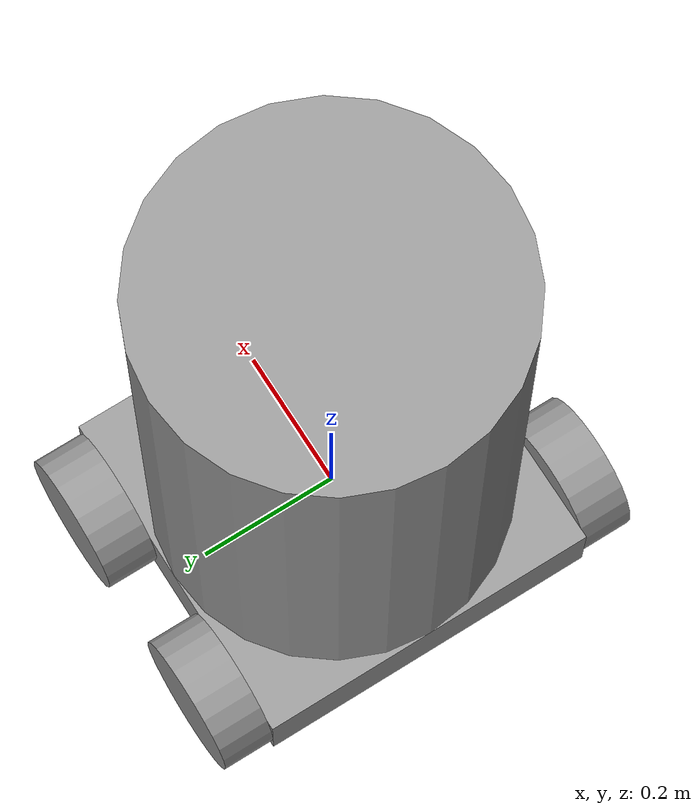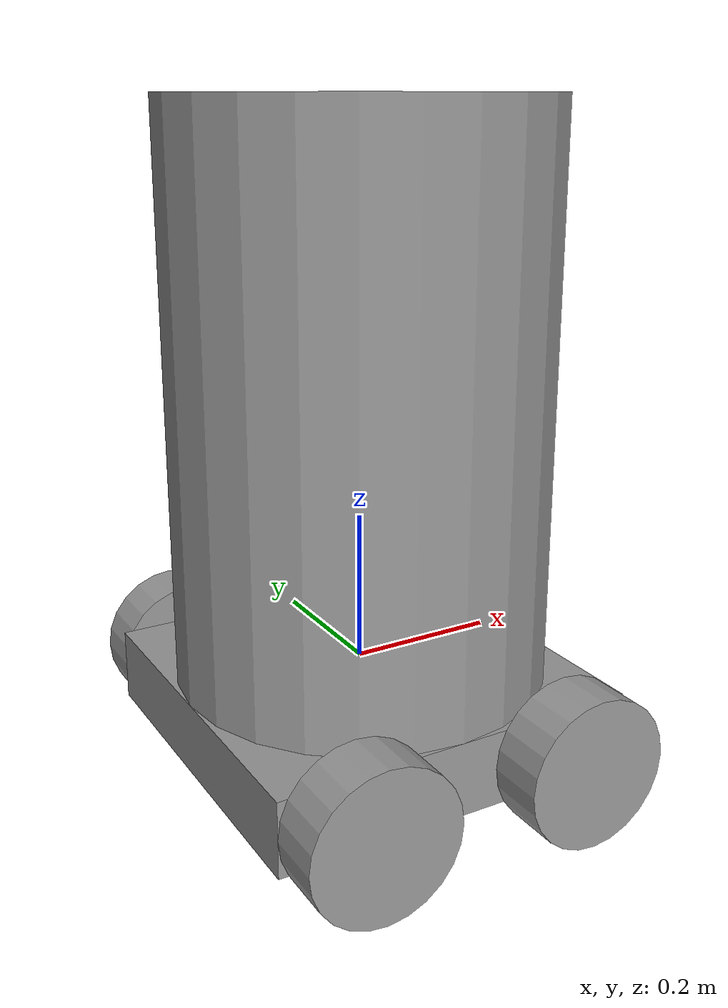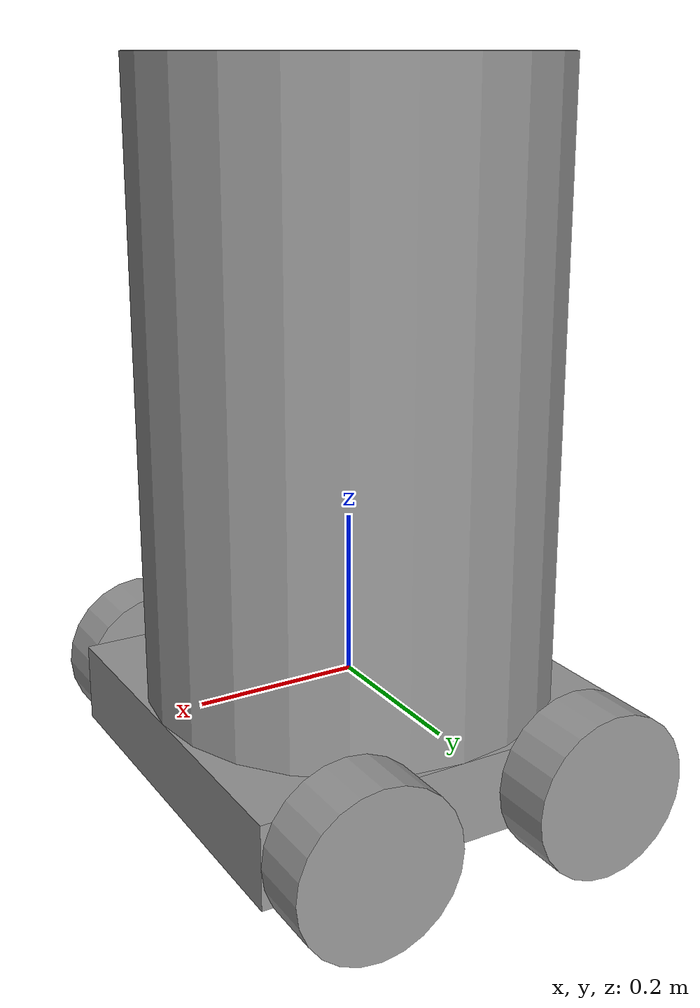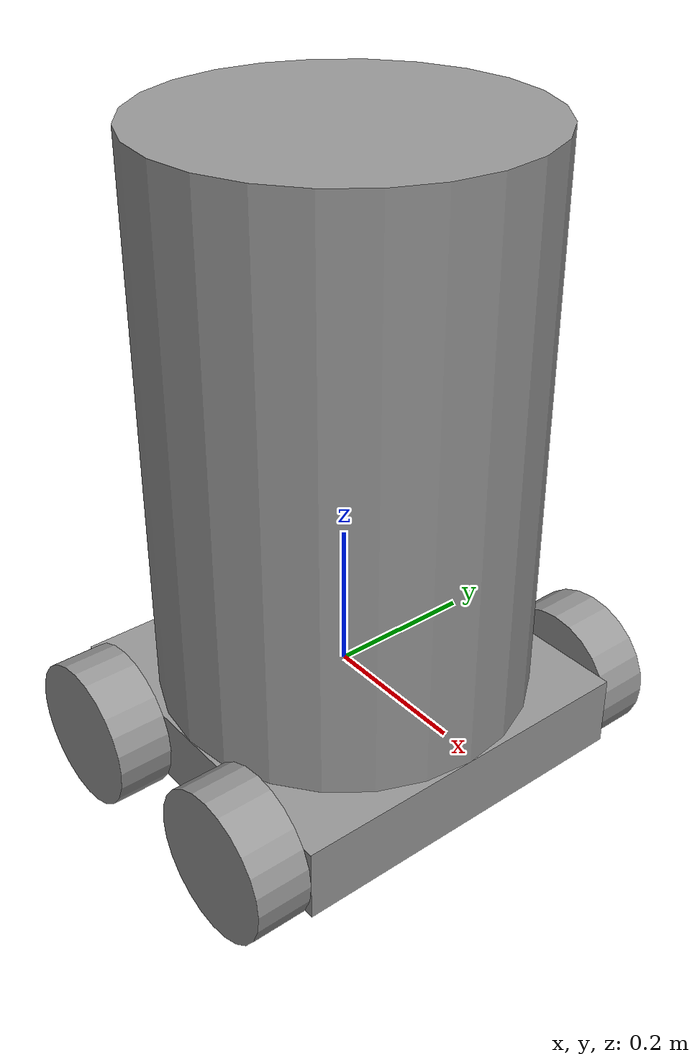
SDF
<?xml version='1.0'?>
<sdf version='1.7'>
  <model name='ServiceRobot'>
    <link name='link_0'>
      <inertial>
        <mass>5</mass>
        <inertia>
          <ixx>0.108333</ixx>
          <ixy>0</ixy>
          <ixz>0</ixz>
          <iyy>0.108333</iyy>
          <iyz>0</iyz>
          <izz>0.208333</izz>
        </inertia>
        <pose>0 0 0 0 -0 0</pose>
      </inertial>
      <pose>0 1e-06 -0.062498 0 -0 0</pose>
      <gravity>1</gravity>
      <self_collide>0</self_collide>
      <kinematic>0</kinematic>
      <enable_wind>0</enable_wind>
      <visual name='visual'>
        <pose>0 0 0 0 -0 0</pose>
        <geometry>
          <box>
            <size>0.5 0.5 0.1</size>
          </box>
        </geometry>
        <material>
          <lighting>1</lighting>
          <script>
            <uri>file://media/materials/scripts/gazebo.material</uri>
            <name>Gazebo/Grey</name>
          </script>
          <shader type='pixel'>
            <normal_map>__default__</normal_map>
          </shader>
          <ambient>0.3 0.3 0.3 1</ambient>
          <diffuse>0.7 0.7 0.7 1</diffuse>
          <specular>0.01 0.01 0.01 1</specular>
          <emissive>0 0 0 1</emissive>
        </material>
        <transparency>0</transparency>
        <cast_shadows>1</cast_shadows>
      </visual>
      <collision name='collision'>
        <laser_retro>0</laser_retro>
        <max_contacts>10</max_contacts>
        <pose>0 0 0 0 -0 0</pose>
        <geometry>
          <box>
            <size>0.5 0.5 0.1</size>
          </box>
        </geometry>
        <surface>
          <friction>
            <ode>
              <mu>1</mu>
              <mu2>1</mu2>
              <fdir1>0 0 0</fdir1>
              <slip1>0</slip1>
              <slip2>0</slip2>
            </ode>
            <torsional>
              <coefficient>1</coefficient>
              <patch_radius>0</patch_radius>
              <surface_radius>0</surface_radius>
              <use_patch_radius>1</use_patch_radius>
              <ode>
                <slip>0</slip>
              </ode>
            </torsional>
          </friction>
          <bounce>
            <restitution_coefficient>0</restitution_coefficient>
            <threshold>1e+06</threshold>
          </bounce>
          <contact>
            <collide_without_contact>0</collide_without_contact>
            <collide_without_contact_bitmask>1</collide_without_contact_bitmask>
            <collide_bitmask>1</collide_bitmask>
            <ode>
              <soft_cfm>0</soft_cfm>
              <soft_erp>0.2</soft_erp>
              <kp>1e+13</kp>
              <kd>1</kd>
              <max_vel>0.01</max_vel>
              <min_depth>0</min_depth>
            </ode>
            <bullet>
              <split_impulse>1</split_impulse>
              <split_impulse_penetration_threshold>-0.01</split_impulse_penetration_threshold>
              <soft_cfm>0</soft_cfm>
              <soft_erp>0.2</soft_erp>
              <kp>1e+13</kp>
              <kd>1</kd>
            </bullet>
          </contact>
        </surface>
      </collision>
    </link>
    <link name='link_1'>
      <inertial>
        <mass>5</mass>
        <inertia>
          <ixx>0.729167</ixx>
          <ixy>0</ixy>
          <ixz>0</ixz>
          <iyy>0.729167</iyy>
          <iyz>0</iyz>
          <izz>0.625</izz>
        </inertia>
        <pose>0 0 0 0 -0 0</pose>
      </inertial>
      <pose>0 1e-06 0.312502 0 -0 0</pose>
      <gravity>1</gravity>
      <self_collide>0</self_collide>
      <kinematic>0</kinematic>
      <enable_wind>0</enable_wind>
      <visual name='visual'>
        <pose>0 0 0 0 -0 0</pose>
        <geometry>
          <cylinder>
            <radius>0.25</radius>
            <length>0.85</length>
          </cylinder>
        </geometry>
        <material>
          <lighting>1</lighting>
          <script>
            <uri>file://media/materials/scripts/gazebo.material</uri>
            <name>Gazebo/Grey</name>
          </script>
          <shader type='pixel'>
            <normal_map>__default__</normal_map>
          </shader>
          <ambient>0.3 0.3 0.3 1</ambient>
          <diffuse>0.7 0.7 0.7 1</diffuse>
          <specular>0.01 0.01 0.01 1</specular>
          <emissive>0 0 0 1</emissive>
        </material>
        <transparency>0</transparency>
        <cast_shadows>1</cast_shadows>
      </visual>
      <collision name='collision'>
        <laser_retro>0</laser_retro>
        <max_contacts>10</max_contacts>
        <pose>0 0 0 0 -0 0</pose>
        <geometry>
          <cylinder>
            <radius>0.25</radius>
            <length>0.85</length>
          </cylinder>
        </geometry>
        <surface>
          <friction>
            <ode>
              <mu>1</mu>
              <mu2>1</mu2>
              <fdir1>0 0 0</fdir1>
              <slip1>0</slip1>
              <slip2>0</slip2>
            </ode>
            <torsional>
              <coefficient>1</coefficient>
              <patch_radius>0</patch_radius>
              <surface_radius>0</surface_radius>
              <use_patch_radius>1</use_patch_radius>
              <ode>
                <slip>0</slip>
              </ode>
            </torsional>
          </friction>
          <bounce>
            <restitution_coefficient>0</restitution_coefficient>
            <threshold>1e+06</threshold>
          </bounce>
          <contact>
            <collide_without_contact>0</collide_without_contact>
            <collide_without_contact_bitmask>1</collide_without_contact_bitmask>
            <collide_bitmask>1</collide_bitmask>
            <ode>
              <soft_cfm>0</soft_cfm>
              <soft_erp>0.2</soft_erp>
              <kp>1e+13</kp>
              <kd>1</kd>
              <max_vel>0.01</max_vel>
              <min_depth>0</min_depth>
            </ode>
            <bullet>
              <split_impulse>1</split_impulse>
              <split_impulse_penetration_threshold>-0.01</split_impulse_penetration_threshold>
              <soft_cfm>0</soft_cfm>
              <soft_erp>0.2</soft_erp>
              <kp>1e+13</kp>
              <kd>1</kd>
            </bullet>
          </contact>
        </surface>
      </collision>
    </link>
    <link name='link_2'>
      <inertial>
        <mass>1</mass>
        <inertia>
          <ixx>0.145833</ixx>
          <ixy>0</ixy>
          <ixz>0</ixz>
          <iyy>0.145833</iyy>
          <iyz>0</iyz>
          <izz>0.125</izz>
        </inertia>
        <pose>0 0 0 0 -0 0</pose>
      </inertial>
      <pose>-0.15 -0.287513 -0.062511 1.5707 -0 0</pose>
      <gravity>1</gravity>
      <self_collide>0</self_collide>
      <kinematic>0</kinematic>
      <enable_wind>0</enable_wind>
      <visual name='visual'>
        <pose>0 0 0 0 -0 0</pose>
        <geometry>
          <cylinder>
            <radius>0.1</radius>
            <length>0.075</length>
          </cylinder>
        </geometry>
        <material>
          <lighting>1</lighting>
          <script>
            <uri>file://media/materials/scripts/gazebo.material</uri>
            <name>Gazebo/Grey</name>
          </script>
          <shader type='pixel'>
            <normal_map>__default__</normal_map>
          </shader>
          <ambient>0.3 0.3 0.3 1</ambient>
          <diffuse>0.7 0.7 0.7 1</diffuse>
          <specular>0.01 0.01 0.01 1</specular>
          <emissive>0 0 0 1</emissive>
        </material>
        <transparency>0</transparency>
        <cast_shadows>1</cast_shadows>
      </visual>
      <collision name='collision'>
        <laser_retro>0</laser_retro>
        <max_contacts>10</max_contacts>
        <pose>0 0 0 0 -0 0</pose>
        <geometry>
          <cylinder>
            <radius>0.1</radius>
            <length>0.075</length>
          </cylinder>
        </geometry>
        <surface>
          <friction>
            <ode>
              <mu>1</mu>
              <mu2>1</mu2>
              <fdir1>0 0 0</fdir1>
              <slip1>0</slip1>
              <slip2>0</slip2>
            </ode>
            <torsional>
              <coefficient>1</coefficient>
              <patch_radius>0</patch_radius>
              <surface_radius>0</surface_radius>
              <use_patch_radius>1</use_patch_radius>
              <ode>
                <slip>0</slip>
              </ode>
            </torsional>
          </friction>
          <bounce>
            <restitution_coefficient>0</restitution_coefficient>
            <threshold>1e+06</threshold>
          </bounce>
          <contact>
            <collide_without_contact>0</collide_without_contact>
            <collide_without_contact_bitmask>1</collide_without_contact_bitmask>
            <collide_bitmask>1</collide_bitmask>
            <ode>
              <soft_cfm>0</soft_cfm>
              <soft_erp>0.2</soft_erp>
              <kp>1e+13</kp>
              <kd>1</kd>
              <max_vel>0.01</max_vel>
              <min_depth>0</min_depth>
            </ode>
            <bullet>
              <split_impulse>1</split_impulse>
              <split_impulse_penetration_threshold>-0.01</split_impulse_penetration_threshold>
              <soft_cfm>0</soft_cfm>
              <soft_erp>0.2</soft_erp>
              <kp>1e+13</kp>
              <kd>1</kd>
            </bullet>
          </contact>
        </surface>
      </collision>
    </link>
    <link name='link_2_clone'>
      <inertial>
        <mass>1</mass>
        <inertia>
          <ixx>0.145833</ixx>
          <ixy>0</ixy>
          <ixz>0</ixz>
          <iyy>0.145833</iyy>
          <iyz>0</iyz>
          <izz>0.125</izz>
        </inertia>
        <pose>0 0 0 0 -0 0</pose>
      </inertial>
      <pose>0.15 -0.287509 -0.062498 1.5707 -0 0</pose>
      <gravity>1</gravity>
      <self_collide>0</self_collide>
      <kinematic>0</kinematic>
      <enable_wind>0</enable_wind>
      <visual name='visual'>
        <pose>0 0 0 0 -0 0</pose>
        <geometry>
          <cylinder>
            <radius>0.1</radius>
            <length>0.075</length>
          </cylinder>
        </geometry>
        <material>
          <lighting>1</lighting>
          <script>
            <uri>file://media/materials/scripts/gazebo.material</uri>
            <name>Gazebo/Grey</name>
          </script>
          <shader type='pixel'>
            <normal_map>__default__</normal_map>
          </shader>
          <ambient>0.3 0.3 0.3 1</ambient>
          <diffuse>0.7 0.7 0.7 1</diffuse>
          <specular>0.01 0.01 0.01 1</specular>
          <emissive>0 0 0 1</emissive>
        </material>
        <transparency>0</transparency>
        <cast_shadows>1</cast_shadows>
      </visual>
      <collision name='collision'>
        <laser_retro>0</laser_retro>
        <max_contacts>10</max_contacts>
        <pose>0 0 0 0 -0 0</pose>
        <geometry>
          <cylinder>
            <radius>0.1</radius>
            <length>0.075</length>
          </cylinder>
        </geometry>
        <surface>
          <friction>
            <ode>
              <mu>1</mu>
              <mu2>1</mu2>
              <fdir1>0 0 0</fdir1>
              <slip1>0</slip1>
              <slip2>0</slip2>
            </ode>
            <torsional>
              <coefficient>1</coefficient>
              <patch_radius>0</patch_radius>
              <surface_radius>0</surface_radius>
              <use_patch_radius>1</use_patch_radius>
              <ode>
                <slip>0</slip>
              </ode>
            </torsional>
          </friction>
          <bounce>
            <restitution_coefficient>0</restitution_coefficient>
            <threshold>1e+06</threshold>
          </bounce>
          <contact>
            <collide_without_contact>0</collide_without_contact>
            <collide_without_contact_bitmask>1</collide_without_contact_bitmask>
            <collide_bitmask>1</collide_bitmask>
            <ode>
              <soft_cfm>0</soft_cfm>
              <soft_erp>0.2</soft_erp>
              <kp>1e+13</kp>
              <kd>1</kd>
              <max_vel>0.01</max_vel>
              <min_depth>0</min_depth>
            </ode>
            <bullet>
              <split_impulse>1</split_impulse>
              <split_impulse_penetration_threshold>-0.01</split_impulse_penetration_threshold>
              <soft_cfm>0</soft_cfm>
              <soft_erp>0.2</soft_erp>
              <kp>1e+13</kp>
              <kd>1</kd>
            </bullet>
          </contact>
        </surface>
      </collision>
    </link>
    <link name='link_2_clone_0'>
      <inertial>
        <mass>1</mass>
        <inertia>
          <ixx>0.145833</ixx>
          <ixy>0</ixy>
          <ixz>0</ixz>
          <iyy>0.145833</iyy>
          <iyz>0</iyz>
          <izz>0.125</izz>
        </inertia>
        <pose>0 0 0 0 -0 0</pose>
      </inertial>
      <pose>0.15 0.28751 -0.062498 1.5707 -0 0</pose>
      <gravity>1</gravity>
      <self_collide>0</self_collide>
      <kinematic>0</kinematic>
      <enable_wind>0</enable_wind>
      <visual name='visual'>
        <pose>0 0 0 0 -0 0</pose>
        <geometry>
          <cylinder>
            <radius>0.1</radius>
            <length>0.075</length>
          </cylinder>
        </geometry>
        <material>
          <lighting>1</lighting>
          <script>
            <uri>file://media/materials/scripts/gazebo.material</uri>
            <name>Gazebo/Grey</name>
          </script>
          <shader type='pixel'>
            <normal_map>__default__</normal_map>
          </shader>
          <ambient>0.3 0.3 0.3 1</ambient>
          <diffuse>0.7 0.7 0.7 1</diffuse>
          <specular>0.01 0.01 0.01 1</specular>
          <emissive>0 0 0 1</emissive>
        </material>
        <transparency>0</transparency>
        <cast_shadows>1</cast_shadows>
      </visual>
      <collision name='collision'>
        <laser_retro>0</laser_retro>
        <max_contacts>10</max_contacts>
        <pose>0 0 0 0 -0 0</pose>
        <geometry>
          <cylinder>
            <radius>0.1</radius>
            <length>0.075</length>
          </cylinder>
        </geometry>
        <surface>
          <friction>
            <ode>
              <mu>1</mu>
              <mu2>1</mu2>
              <fdir1>0 0 0</fdir1>
              <slip1>0</slip1>
              <slip2>0</slip2>
            </ode>
            <torsional>
              <coefficient>1</coefficient>
              <patch_radius>0</patch_radius>
              <surface_radius>0</surface_radius>
              <use_patch_radius>1</use_patch_radius>
              <ode>
                <slip>0</slip>
              </ode>
            </torsional>
          </friction>
          <bounce>
            <restitution_coefficient>0</restitution_coefficient>
            <threshold>1e+06</threshold>
          </bounce>
          <contact>
            <collide_without_contact>0</collide_without_contact>
            <collide_without_contact_bitmask>1</collide_without_contact_bitmask>
            <collide_bitmask>1</collide_bitmask>
            <ode>
              <soft_cfm>0</soft_cfm>
              <soft_erp>0.2</soft_erp>
              <kp>1e+13</kp>
              <kd>1</kd>
              <max_vel>0.01</max_vel>
              <min_depth>0</min_depth>
            </ode>
            <bullet>
              <split_impulse>1</split_impulse>
              <split_impulse_penetration_threshold>-0.01</split_impulse_penetration_threshold>
              <soft_cfm>0</soft_cfm>
              <soft_erp>0.2</soft_erp>
              <kp>1e+13</kp>
              <kd>1</kd>
            </bullet>
          </contact>
        </surface>
      </collision>
    </link>
    <link name='link_2_clone_1'>
      <inertial>
        <mass>1</mass>
        <inertia>
          <ixx>0.145833</ixx>
          <ixy>0</ixy>
          <ixz>0</ixz>
          <iyy>0.145833</iyy>
          <iyz>0</iyz>
          <izz>0.125</izz>
        </inertia>
        <pose>0 0 0 0 -0 0</pose>
      </inertial>
      <pose>-0.15 0.28751 -0.062498 1.5707 -0 0</pose>
      <gravity>1</gravity>
      <self_collide>0</self_collide>
      <kinematic>0</kinematic>
      <enable_wind>0</enable_wind>
      <visual name='visual'>
        <pose>0 0 0 0 -0 0</pose>
        <geometry>
          <cylinder>
            <radius>0.1</radius>
            <length>0.075</length>
          </cylinder>
        </geometry>
        <material>
          <lighting>1</lighting>
          <script>
            <uri>file://media/materials/scripts/gazebo.material</uri>
            <name>Gazebo/Grey</name>
          </script>
          <shader type='pixel'>
            <normal_map>__default__</normal_map>
          </shader>
          <ambient>0.3 0.3 0.3 1</ambient>
          <diffuse>0.7 0.7 0.7 1</diffuse>
          <specular>0.01 0.01 0.01 1</specular>
          <emissive>0 0 0 1</emissive>
        </material>
        <transparency>0</transparency>
        <cast_shadows>1</cast_shadows>
      </visual>
      <collision name='collision'>
        <laser_retro>0</laser_retro>
        <max_contacts>10</max_contacts>
        <pose>0 0 0 0 -0 0</pose>
        <geometry>
          <cylinder>
            <radius>0.1</radius>
            <length>0.075</length>
          </cylinder>
        </geometry>
        <surface>
          <friction>
            <ode>
              <mu>1</mu>
              <mu2>1</mu2>
              <fdir1>0 0 0</fdir1>
              <slip1>0</slip1>
              <slip2>0</slip2>
            </ode>
            <torsional>
              <coefficient>1</coefficient>
              <patch_radius>0</patch_radius>
              <surface_radius>0</surface_radius>
              <use_patch_radius>1</use_patch_radius>
              <ode>
                <slip>0</slip>
              </ode>
            </torsional>
          </friction>
          <bounce>
            <restitution_coefficient>0</restitution_coefficient>
            <threshold>1e+06</threshold>
          </bounce>
          <contact>
            <collide_without_contact>0</collide_without_contact>
            <collide_without_contact_bitmask>1</collide_without_contact_bitmask>
            <collide_bitmask>1</collide_bitmask>
            <ode>
              <soft_cfm>0</soft_cfm>
              <soft_erp>0.2</soft_erp>
              <kp>1e+13</kp>
              <kd>1</kd>
              <max_vel>0.01</max_vel>
              <min_depth>0</min_depth>
            </ode>
            <bullet>
              <split_impulse>1</split_impulse>
              <split_impulse_penetration_threshold>-0.01</split_impulse_penetration_threshold>
              <soft_cfm>0</soft_cfm>
              <soft_erp>0.2</soft_erp>
              <kp>1e+13</kp>
              <kd>1</kd>
            </bullet>
          </contact>
        </surface>
      </collision>
    </link>
    <joint name='link_0_JOINT_0' type='fixed'>
      <parent>link_0</parent>
      <child>link_1</child>
      <pose>0 0 0 0 -0 0</pose>
      <physics>
        <ode>
          <limit>
            <cfm>0</cfm>
            <erp>0.2</erp>
          </limit>
          <suspension>
            <cfm>0</cfm>
            <erp>0.2</erp>
          </suspension>
        </ode>
      </physics>
    </joint>
    <joint name='link_0_JOINT_1' type='revolute'>
      <parent>link_0</parent>
      <child>link_2</child>
      <pose>0 0 0 0 -0 0</pose>
      <axis>
        <xyz>0 0 1</xyz>
        <limit>
          <lower>-1.79769e+308</lower>
          <upper>1.79769e+308</upper>
          <effort>-1</effort>
          <velocity>-1</velocity>
        </limit>
        <dynamics>
          <spring_reference>0</spring_reference>
          <spring_stiffness>0</spring_stiffness>
          <damping>0</damping>
          <friction>0</friction>
        </dynamics>
      </axis>
      <physics>
        <ode>
          <limit>
            <cfm>0</cfm>
            <erp>0.2</erp>
          </limit>
          <suspension>
            <cfm>0</cfm>
            <erp>0.2</erp>
          </suspension>
        </ode>
      </physics>
    </joint>
    <joint name='link_0_JOINT_4' type='revolute'>
      <parent>link_0</parent>
      <child>link_2_clone</child>
      <pose>0 0 0 0 -0 0</pose>
      <axis>
        <xyz>0 0 1</xyz>
        <limit>
          <lower>-1.79769e+308</lower>
          <upper>1.79769e+308</upper>
          <effort>-1</effort>
          <velocity>-1</velocity>
        </limit>
        <dynamics>
          <spring_reference>0</spring_reference>
          <spring_stiffness>0</spring_stiffness>
          <damping>0</damping>
        </dynamics>
      </axis>
      <physics>
        <ode>
          <limit>
            <cfm>0</cfm>
            <erp>0.2</erp>
          </limit>
          <suspension>
            <cfm>0</cfm>
            <erp>0.2</erp>
          </suspension>
        </ode>
      </physics>
    </joint>
    <joint name='link_0_JOINT_5' type='revolute'>
      <parent>link_0</parent>
      <child>link_2_clone_0</child>
      <pose>0 0 0 0 -0 0</pose>
      <axis>
        <xyz>-0 -0 -1</xyz>
        <limit>
          <lower>-1.79769e+308</lower>
          <upper>1.79769e+308</upper>
          <effort>-1</effort>
          <velocity>-1</velocity>
        </limit>
        <dynamics>
          <spring_reference>0</spring_reference>
          <spring_stiffness>0</spring_stiffness>
          <damping>0</damping>
        </dynamics>
      </axis>
      <physics>
        <ode>
          <limit>
            <cfm>0</cfm>
            <erp>0.2</erp>
          </limit>
          <suspension>
            <cfm>0</cfm>
            <erp>0.2</erp>
          </suspension>
        </ode>
      </physics>
    </joint>
    <joint name='link_0_JOINT_6' type='revolute'>
      <parent>link_0</parent>
      <child>link_2_clone_1</child>
      <pose>0 0 0 0 -0 0</pose>
      <axis>
        <xyz>-0 -0 -1</xyz>
        <limit>
          <lower>-1.79769e+308</lower>
          <upper>1.79769e+308</upper>
          <effort>-1</effort>
          <velocity>-1</velocity>
        </limit>
        <dynamics>
          <spring_reference>0</spring_reference>
          <spring_stiffness>0</spring_stiffness>
          <damping>0</damping>
        </dynamics>
      </axis>
      <physics>
        <ode>
          <limit>
            <cfm>0</cfm>
            <erp>0.2</erp>
          </limit>
          <suspension>
            <cfm>0</cfm>
            <erp>0.2</erp>
          </suspension>
        </ode>
      </physics>
    </joint>
    <static>0</static>
    <allow_auto_disable>1</allow_auto_disable>
  </model>
</sdf>
